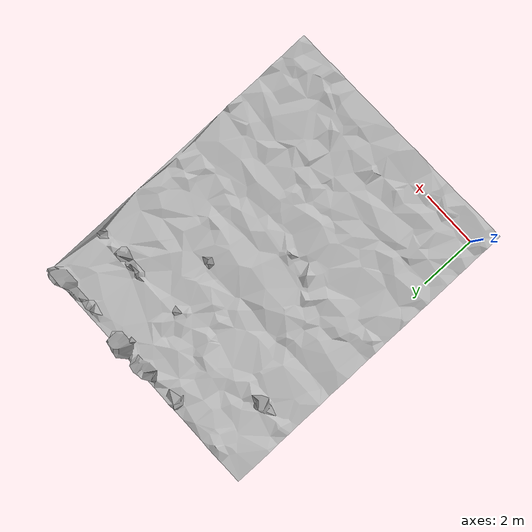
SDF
<?xml version="1.0" ?>
<sdf version="1.10">
    <model name="map_130_100">
        <link name="map_130_100_link">
            <visual name="map_130_100_visual">
                <geometry>
                    <mesh>
                        <uri>meshes/visual/map_130_100.obj</uri>
                    </mesh>
                </geometry>
            </visual>
            <collision name="map_130_100_collision">
                <surface>
                    <friction>
                        <ode>
                            <mu>2.316343837943928</mu>
                            <mu2>2.316343837943928</mu2>
                        </ode>
                        <bullet>
                            <friction>2.316343837943928</friction>
                            <friction2>2.316343837943928</friction2>
                        </bullet>
                    </friction>
                </surface>
                <geometry>
                    <mesh>
                        <uri>meshes/visual/map_130_100.obj</uri>
                    </mesh>
                </geometry>
            </collision>
        </link>
        <static>True</static>
    </model>
</sdf>
